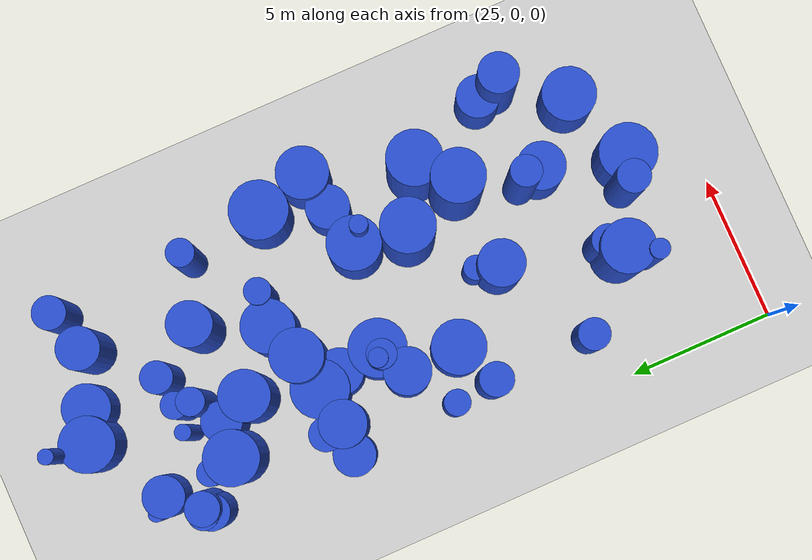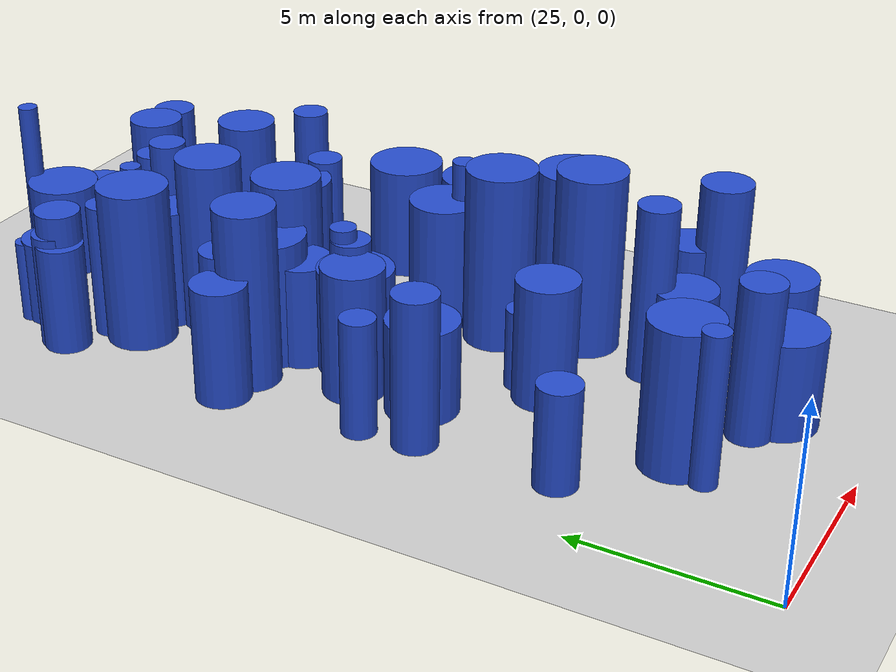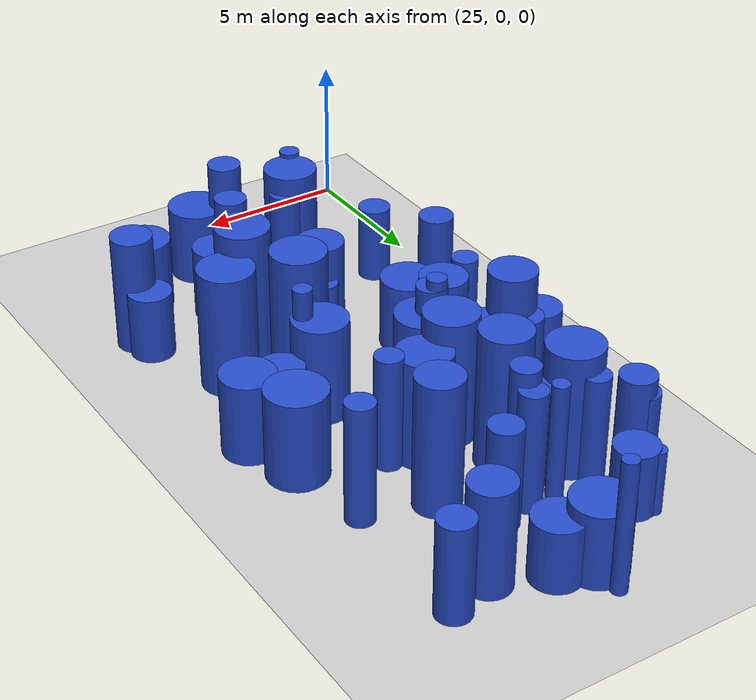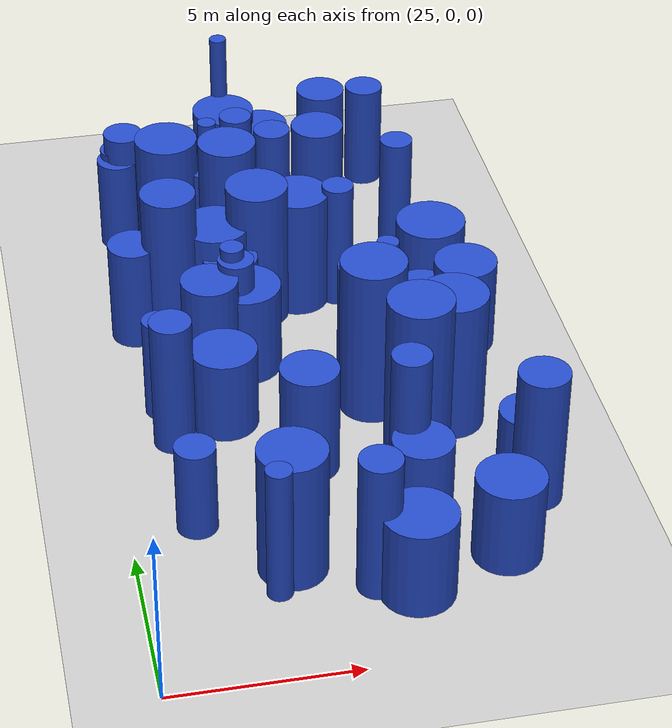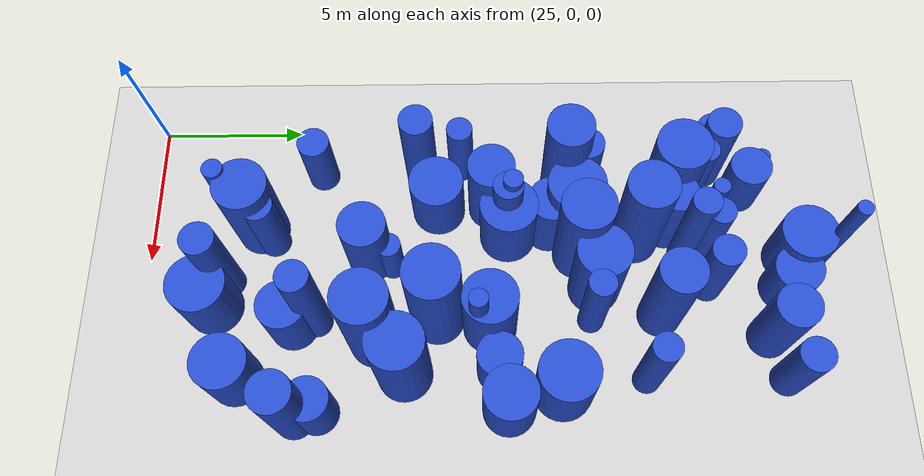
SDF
<sdf version="1.6">
 <world name="default">
  <model name="ground_plane">
   <static>1</static>
   <link name="link">
    <collision name="collision">
     <geometry><plane><normal>0 0 1</normal><size>100 100</size></plane></geometry>
     <surface><friction><ode><mu>100</mu><mu2>50</mu2></ode></friction></surface>
    </collision>
    <visual name="visual">
     <cast_shadows>0</cast_shadows>
     <geometry><plane><normal>0 0 1</normal><size>100 100</size></plane></geometry>
     <material>
      <script><uri>file://media/materials/scripts/gazebo.material</uri><name>Gazebo/Grey</name></script>
     </material>
    </visual>
   </link>
  </model>
  <model name="22">
   <static>0</static>
   <link name="link">
    <inertial>
     <mass>2</mass>
     <inertia><ixx>2.6096</ixx><ixy>0</ixy><ixz>0</ixz><iyy>2.6096</iyy><iyz>0</iyz><izz>0.20705</izz></inertia>
    </inertial>
    <collision name="collision">
     <geometry><cylinder><length>3.87769</length><radius>0.455027</radius></cylinder></geometry>
     <surface><contact><collide_without_contact>1</collide_without_contact></contact></surface>
    </collision>
    <visual name="visual">
     <geometry><cylinder><length>3.87769</length><radius>0.455027</radius></cylinder></geometry>
     <material>
      <script><uri>file://media/materials/scripts/gazebo.material</uri><name>Gazebo/Blue</name></script>
     </material>
    </visual>
    <gravity>0</gravity>
   </link>
   <pose>32.4033 15.4487 1.93884 0 -0 0</pose>
  </model>
  <model name="32">
   <static>0</static>
   <link name="link">
    <inertial>
     <mass>2</mass>
     <inertia><ixx>1.10606</ixx><ixy>0</ixy><ixz>0</ixz><iyy>1.10606</iyy><iyz>0</iyz><izz>0.512174</izz></inertia>
    </inertial>
    <collision name="collision">
     <geometry><cylinder><length>2.25828</length><radius>0.715663</radius></cylinder></geometry>
     <surface><contact><collide_without_contact>1</collide_without_contact></contact></surface>
    </collision>
    <visual name="visual">
     <geometry><cylinder><length>2.25828</length><radius>0.715663</radius></cylinder></geometry>
     <material>
      <script><uri>file://media/materials/scripts/gazebo.material</uri><name>Gazebo/Blue</name></script>
     </material>
    </visual>
    <gravity>0</gravity>
   </link>
   <pose>27.6259 21.0165 1.12914 0 -0 0</pose>
  </model>
  <model name="36">
   <static>0</static>
   <link name="link">
    <inertial>
     <mass>2</mass>
     <inertia><ixx>1.08426</ixx><ixy>0</ixy><ixz>0</ixz><iyy>1.08426</iyy><iyz>0</iyz><izz>0.683304</izz></inertia>
    </inertial>
    <collision name="collision">
     <geometry><cylinder><length>2.11084</length><radius>0.826622</radius></cylinder></geometry>
     <surface><contact><collide_without_contact>1</collide_without_contact></contact></surface>
    </collision>
    <visual name="visual">
     <geometry><cylinder><length>2.11084</length><radius>0.826622</radius></cylinder></geometry>
     <material>
      <script><uri>file://media/materials/scripts/gazebo.material</uri><name>Gazebo/Blue</name></script>
     </material>
    </visual>
    <gravity>0</gravity>
   </link>
   <pose>31.3215 22.2177 1.05542 0 -0 0</pose>
  </model>
  <model name="43">
   <static>0</static>
   <link name="link">
    <inertial>
     <mass>2</mass>
     <inertia><ixx>2.34581</ixx><ixy>0</ixy><ixz>0</ixz><iyy>2.34581</iyy><iyz>0</iyz><izz>0.257799</izz></inertia>
    </inertial>
    <collision name="collision">
     <geometry><cylinder><length>3.64712</length><radius>0.507739</radius></cylinder></geometry>
     <surface><contact><collide_without_contact>1</collide_without_contact></contact></surface>
    </collision>
    <visual name="visual">
     <geometry><cylinder><length>3.64712</length><radius>0.507739</radius></cylinder></geometry>
     <material>
      <script><uri>file://media/materials/scripts/gazebo.material</uri><name>Gazebo/Blue</name></script>
     </material>
    </visual>
    <gravity>0</gravity>
   </link>
   <pose>28.9554 12.6154 1.82356 0 -0 0</pose>
  </model>
  <model name="44">
   <static>0</static>
   <link name="link">
    <inertial>
     <mass>2</mass>
     <inertia><ixx>1.1939</ixx><ixy>0</ixy><ixz>0</ixz><iyy>1.1939</iyy><iyz>0</iyz><izz>0.566577</izz></inertia>
    </inertial>
    <collision name="collision">
     <geometry><cylinder><length>2.33744</length><radius>0.752713</radius></cylinder></geometry>
     <surface><contact><collide_without_contact>1</collide_without_contact></contact></surface>
    </collision>
    <visual name="visual">
     <geometry><cylinder><length>2.33744</length><radius>0.752713</radius></cylinder></geometry>
     <material>
      <script><uri>file://media/materials/scripts/gazebo.material</uri><name>Gazebo/Blue</name></script>
     </material>
    </visual>
    <gravity>0</gravity>
   </link>
   <pose>34.1931 12.2769 1.16872 0 -0 0</pose>
  </model>
  <model name="83">
   <static>0</static>
   <link name="link">
    <inertial>
     <mass>2</mass>
     <inertia><ixx>2.69133</ixx><ixy>0</ixy><ixz>0</ixz><iyy>2.69133</iyy><iyz>0</iyz><izz>0.117303</izz></inertia>
    </inertial>
    <collision name="collision">
     <geometry><cylinder><length>3.97443</length><radius>0.342496</radius></cylinder></geometry>
     <surface><contact><collide_without_contact>1</collide_without_contact></contact></surface>
    </collision>
    <visual name="visual">
     <geometry><cylinder><length>3.97443</length><radius>0.342496</radius></cylinder></geometry>
     <material>
      <script><uri>file://media/materials/scripts/gazebo.material</uri><name>Gazebo/Blue</name></script>
     </material>
    </visual>
    <gravity>0</gravity>
   </link>
   <pose>28.4111 3.06658 1.98721 0 -0 0</pose>
  </model>
  <model name="86">
   <static>0</static>
   <link name="link">
    <inertial>
     <mass>2</mass>
     <inertia><ixx>3.4008</ixx><ixy>0</ixy><ixz>0</ixz><iyy>3.4008</iyy><iyz>0</iyz><izz>0.876047</izz></inertia>
    </inertial>
    <collision name="collision">
     <geometry><cylinder><length>4.21624</length><radius>0.935974</radius></cylinder></geometry>
     <surface><contact><collide_without_contact>1</collide_without_contact></contact></surface>
    </collision>
    <visual name="visual">
     <geometry><cylinder><length>4.21624</length><radius>0.935974</radius></cylinder></geometry>
     <material>
      <script><uri>file://media/materials/scripts/gazebo.material</uri><name>Gazebo/Blue</name></script>
     </material>
    </visual>
    <gravity>0</gravity>
   </link>
   <pose>34.2648 9.11138 2.10812 0 -0 0</pose>
  </model>
  <model name="87">
   <static>0</static>
   <link name="link">
    <inertial>
     <mass>2</mass>
     <inertia><ixx>2.04351</ixx><ixy>0</ixy><ixz>0</ixz><iyy>2.04351</iyy><iyz>0</iyz><izz>0.993499</izz></inertia>
    </inertial>
    <collision name="collision">
     <geometry><cylinder><length>3.0464</length><radius>0.996744</radius></cylinder></geometry>
     <surface><contact><collide_without_contact>1</collide_without_contact></contact></surface>
    </collision>
    <visual name="visual">
     <geometry><cylinder><length>3.0464</length><radius>0.996744</radius></cylinder></geometry>
     <material>
      <script><uri>file://media/materials/scripts/gazebo.material</uri><name>Gazebo/Blue</name></script>
     </material>
    </visual>
    <gravity>0</gravity>
   </link>
   <pose>34.9165 14.3917 1.5232 0 -0 0</pose>
  </model>
  <model name="93">
   <static>0</static>
   <link name="link">
    <inertial>
     <mass>2</mass>
     <inertia><ixx>4.1964</ixx><ixy>0</ixy><ixz>0</ixz><iyy>4.1964</iyy><iyz>0</iyz><izz>0.839935</izz></inertia>
    </inertial>
    <collision name="collision">
     <geometry><cylinder><length>4.76011</length><radius>0.91648</radius></cylinder></geometry>
     <surface><contact><collide_without_contact>1</collide_without_contact></contact></surface>
    </collision>
    <visual name="visual">
     <geometry><cylinder><length>4.76011</length><radius>0.91648</radius></cylinder></geometry>
     <material>
      <script><uri>file://media/materials/scripts/gazebo.material</uri><name>Gazebo/Blue</name></script>
     </material>
    </visual>
    <gravity>0</gravity>
   </link>
   <pose>32.3039 10.2034 2.38005 0 -0 0</pose>
  </model>
  <model name="97">
   <static>0</static>
   <link name="link">
    <inertial>
     <mass>2</mass>
     <inertia><ixx>3.54501</ixx><ixy>0</ixy><ixz>0</ixz><iyy>3.54501</iyy><iyz>0</iyz><izz>0.223195</izz></inertia>
    </inertial>
    <collision name="collision">
     <geometry><cylinder><length>4.53878</length><radius>0.472435</radius></cylinder></geometry>
     <surface><contact><collide_without_contact>1</collide_without_contact></contact></surface>
    </collision>
    <visual name="visual">
     <geometry><cylinder><length>4.53878</length><radius>0.472435</radius></cylinder></geometry>
     <material>
      <script><uri>file://media/materials/scripts/gazebo.material</uri><name>Gazebo/Blue</name></script>
     </material>
    </visual>
    <gravity>0</gravity>
   </link>
   <pose>29.9844 18.7604 2.26939 0 -0 0</pose>
  </model>
  <model name="100">
   <static>0</static>
   <link name="link">
    <inertial>
     <mass>2</mass>
     <inertia><ixx>2.86751</ixx><ixy>0</ixy><ixz>0</ixz><iyy>2.86751</iyy><iyz>0</iyz><izz>0.204569</izz></inertia>
    </inertial>
    <collision name="collision">
     <geometry><cylinder><length>4.07325</length><radius>0.452293</radius></cylinder></geometry>
     <surface><contact><collide_without_contact>1</collide_without_contact></contact></surface>
    </collision>
    <visual name="visual">
     <geometry><cylinder><length>4.07325</length><radius>0.452293</radius></cylinder></geometry>
     <material>
      <script><uri>file://media/materials/scripts/gazebo.material</uri><name>Gazebo/Blue</name></script>
     </material>
    </visual>
    <gravity>0</gravity>
   </link>
   <pose>30.1114 19.322 2.03662 0 -0 0</pose>
  </model>
  <model name="109">
   <static>0</static>
   <link name="link">
    <inertial>
     <mass>2</mass>
     <inertia>
      <ixx>3.21555</ixx>
      <ixy>0</ixy>
      <ixz>0</ixz>
      <iyy>3.21555</iyy>
      <iyz>0</iyz>
      <izz>0.0969997</izz>
     </inertia>
    </inertial>
    <collision name="collision">
     <geometry><cylinder><length>4.35916</length><radius>0.311448</radius></cylinder></geometry>
     <surface><contact><collide_without_contact>1</collide_without_contact></contact></surface>
    </collision>
    <visual name="visual">
     <geometry><cylinder><length>4.35916</length><radius>0.311448</radius></cylinder></geometry>
     <material>
      <script><uri>file://media/materials/scripts/gazebo.material</uri><name>Gazebo/Blue</name></script>
     </material>
    </visual>
    <gravity>0</gravity>
   </link>
   <pose>33.0139 11.622 2.17958 0 -0 0</pose>
  </model>
  <model name="123">
   <static>0</static>
   <link name="link">
    <inertial>
     <mass>2</mass>
     <inertia><ixx>2.97522</ixx><ixy>0</ixy><ixz>0</ixz><iyy>2.97522</iyy><iyz>0</iyz><izz>0.477931</izz></inertia>
    </inertial>
    <collision name="collision">
     <geometry><cylinder><length>4.05186</length><radius>0.691325</radius></cylinder></geometry>
     <surface><contact><collide_without_contact>1</collide_without_contact></contact></surface>
    </collision>
    <visual name="visual">
     <geometry><cylinder><length>4.05186</length><radius>0.691325</radius></cylinder></geometry>
     <material>
      <script><uri>file://media/materials/scripts/gazebo.material</uri><name>Gazebo/Blue</name></script>
     </material>
    </visual>
    <gravity>0</gravity>
   </link>
   <pose>35.7167 5.49025 2.02593 0 -0 0</pose>
  </model>
  <model name="126">
   <static>0</static>
   <link name="link">
    <inertial>
     <mass>2</mass>
     <inertia><ixx>2.28573</ixx><ixy>0</ixy><ixz>0</ixz><iyy>2.28573</iyy><iyz>0</iyz><izz>0.638957</izz></inertia>
    </inertial>
    <collision name="collision">
     <geometry><cylinder><length>3.43475</length><radius>0.799348</radius></cylinder></geometry>
     <surface><contact><collide_without_contact>1</collide_without_contact></contact></surface>
    </collision>
    <visual name="visual">
     <geometry><cylinder><length>3.43475</length><radius>0.799348</radius></cylinder></geometry>
     <material>
      <script><uri>file://media/materials/scripts/gazebo.material</uri><name>Gazebo/Blue</name></script>
     </material>
    </visual>
    <gravity>0</gravity>
   </link>
   <pose>28.1238 12.0692 1.71738 0 -0 0</pose>
  </model>
  <model name="148">
   <static>0</static>
   <link name="link">
    <inertial>
     <mass>2</mass>
     <inertia><ixx>1.67502</ixx><ixy>0</ixy><ixz>0</ixz><iyy>1.67502</iyy><iyz>0</iyz><izz>0.801009</izz></inertia>
    </inertial>
    <collision name="collision">
     <geometry><cylinder><length>2.76534</length><radius>0.894991</radius></cylinder></geometry>
     <surface><contact><collide_without_contact>1</collide_without_contact></contact></surface>
    </collision>
    <visual name="visual">
     <geometry><cylinder><length>2.76534</length><radius>0.894991</radius></cylinder></geometry>
     <material>
      <script><uri>file://media/materials/scripts/gazebo.material</uri><name>Gazebo/Blue</name></script>
     </material>
    </visual>
    <gravity>0</gravity>
   </link>
   <pose>35.5057 12.5909 1.38267 0 -0 0</pose>
  </model>
  <model name="154">
   <static>0</static>
   <link name="link">
    <inertial>
     <mass>2</mass>
     <inertia><ixx>2.68121</ixx><ixy>0</ixy><ixz>0</ixz><iyy>2.68121</iyy><iyz>0</iyz><izz>0.810306</izz></inertia>
    </inertial>
    <collision name="collision">
     <geometry><cylinder><length>3.69545</length><radius>0.90017</radius></cylinder></geometry>
     <surface><contact><collide_without_contact>1</collide_without_contact></contact></surface>
    </collision>
    <visual name="visual">
     <geometry><cylinder><length>3.69545</length><radius>0.90017</radius></cylinder></geometry>
     <material>
      <script><uri>file://media/materials/scripts/gazebo.material</uri><name>Gazebo/Blue</name></script>
     </material>
    </visual>
    <gravity>0</gravity>
   </link>
   <pose>31.2562 15.6058 1.84772 0 -0 0</pose>
  </model>
  <model name="163">
   <static>0</static>
   <link name="link">
    <inertial>
     <mass>2</mass>
     <inertia><ixx>2.10866</ixx><ixy>0</ixy><ixz>0</ixz><iyy>2.10866</iyy><iyz>0</iyz><izz>0.326374</izz></inertia>
    </inertial>
    <collision name="collision">
     <geometry><cylinder><length>3.41656</length><radius>0.571292</radius></cylinder></geometry>
     <surface><contact><collide_without_contact>1</collide_without_contact></contact></surface>
    </collision>
    <visual name="visual">
     <geometry><cylinder><length>3.41656</length><radius>0.571292</radius></cylinder></geometry>
     <material>
      <script><uri>file://media/materials/scripts/gazebo.material</uri><name>Gazebo/Blue</name></script>
     </material>
    </visual>
    <gravity>0</gravity>
   </link>
   <pose>27.323 15.2917 1.70828 0 -0 0</pose>
  </model>
  <model name="168">
   <static>0</static>
   <link name="link">
    <inertial>
     <mass>2</mass>
     <inertia><ixx>1.86296</ixx><ixy>0</ixy><ixz>0</ixz><iyy>1.86296</iyy><iyz>0</iyz><izz>0.296661</izz></inertia>
    </inertial>
    <collision name="collision">
     <geometry><cylinder><length>3.20745</length><radius>0.544666</radius></cylinder></geometry>
     <surface><contact><collide_without_contact>1</collide_without_contact></contact></surface>
    </collision>
    <visual name="visual">
     <geometry><cylinder><length>3.20745</length><radius>0.544666</radius></cylinder></geometry>
     <material>
      <script><uri>file://media/materials/scripts/gazebo.material</uri><name>Gazebo/Blue</name></script>
     </material>
    </visual>
    <gravity>0</gravity>
   </link>
   <pose>29.3722 4.37823 1.60373 0 -0 0</pose>
  </model>
  <model name="176">
   <static>0</static>
   <link name="link">
    <inertial>
     <mass>2</mass>
     <inertia><ixx>1.55889</ixx><ixy>0</ixy><ixz>0</ixz><iyy>1.55889</iyy><iyz>0</iyz><izz>0.375125</izz></inertia>
    </inertial>
    <collision name="collision">
     <geometry><cylinder><length>2.86844</length><radius>0.612475</radius></cylinder></geometry>
     <surface><contact><collide_without_contact>1</collide_without_contact></contact></surface>
    </collision>
    <visual name="visual">
     <geometry><cylinder><length>2.86844</length><radius>0.612475</radius></cylinder></geometry>
     <material>
      <script><uri>file://media/materials/scripts/gazebo.material</uri><name>Gazebo/Blue</name></script>
     </material>
    </visual>
    <gravity>0</gravity>
   </link>
   <pose>26.525 19.7111 1.43422 0 -0 0</pose>
  </model>
  <model name="180">
   <static>0</static>
   <link name="link">
    <inertial>
     <mass>2</mass>
     <inertia><ixx>1.32146</ixx><ixy>0</ixy><ixz>0</ixz><iyy>1.32146</iyy><iyz>0</iyz><izz>0.300409</izz></inertia>
    </inertial>
    <collision name="collision">
     <geometry><cylinder><length>2.65095</length><radius>0.548096</radius></cylinder></geometry>
     <surface><contact><collide_without_contact>1</collide_without_contact></contact></surface>
    </collision>
    <visual name="visual">
     <geometry><cylinder><length>2.65095</length><radius>0.548096</radius></cylinder></geometry>
     <material>
      <script><uri>file://media/materials/scripts/gazebo.material</uri><name>Gazebo/Blue</name></script>
     </material>
    </visual>
    <gravity>0</gravity>
   </link>
   <pose>26.7727 5.97526 1.32547 0 -0 0</pose>
  </model>
  <model name="186">
   <static>0</static>
   <link name="link">
    <inertial>
     <mass>2</mass>
     <inertia><ixx>1.58975</ixx><ixy>0</ixy><ixz>0</ixz><iyy>1.58975</iyy><iyz>0</iyz><izz>0.976743</izz></inertia>
    </inertial>
    <collision name="collision">
     <geometry><cylinder><length>2.57065</length><radius>0.988303</radius></cylinder></geometry>
     <surface><contact><collide_without_contact>1</collide_without_contact></contact></surface>
    </collision>
    <visual name="visual">
     <geometry><cylinder><length>2.57065</length><radius>0.988303</radius></cylinder></geometry>
     <material>
      <script><uri>file://media/materials/scripts/gazebo.material</uri><name>Gazebo/Blue</name></script>
     </material>
    </visual>
    <gravity>0</gravity>
   </link>
   <pose>31.8033 2.4684 1.28533 0 -0 0</pose>
  </model>
  <model name="195">
   <static>0</static>
   <link name="link">
    <inertial>
     <mass>2</mass>
     <inertia><ixx>2.93314</ixx><ixy>0</ixy><ixz>0</ixz><iyy>2.93314</iyy><iyz>0</iyz><izz>0.320002</izz></inertia>
    </inertial>
    <collision name="collision">
     <geometry><cylinder><length>4.07908</length><radius>0.565687</radius></cylinder></geometry>
     <surface><contact><collide_without_contact>1</collide_without_contact></contact></surface>
    </collision>
    <visual name="visual">
     <geometry><cylinder><length>4.07908</length><radius>0.565687</radius></cylinder></geometry>
     <material>
      <script><uri>file://media/materials/scripts/gazebo.material</uri><name>Gazebo/Blue</name></script>
     </material>
    </visual>
    <gravity>0</gravity>
   </link>
   <pose>30.8856 2.87461 2.03954 0 -0 0</pose>
  </model>
  <model name="199">
   <static>0</static>
   <link name="link">
    <inertial>
     <mass>2</mass>
     <inertia><ixx>2.68232</ixx><ixy>0</ixy><ixz>0</ixz><iyy>2.68232</iyy><iyz>0</iyz><izz>0.110041</izz></inertia>
    </inertial>
    <collision name="collision">
     <geometry><cylinder><length>3.97037</length><radius>0.331725</radius></cylinder></geometry>
     <surface><contact><collide_without_contact>1</collide_without_contact></contact></surface>
    </collision>
    <visual name="visual">
     <geometry><cylinder><length>3.97037</length><radius>0.331725</radius></cylinder></geometry>
     <material>
      <script><uri>file://media/materials/scripts/gazebo.material</uri><name>Gazebo/Blue</name></script>
     </material>
    </visual>
    <gravity>0</gravity>
   </link>
   <pose>28.8775 12.7667 1.98518 0 -0 0</pose>
  </model>
  <model name="200">
   <static>0</static>
   <link name="link">
    <inertial>
     <mass>2</mass>
     <inertia>
      <ixx>2.72184</ixx>
      <ixy>0</ixy>
      <ixz>0</ixz>
      <iyy>2.72184</iyy>
      <iyz>0</iyz>
      <izz>0.0756005</izz>
     </inertia>
    </inertial>
    <collision name="collision">
     <geometry><cylinder><length>4.01301</length><radius>0.274956</radius></cylinder></geometry>
     <surface><contact><collide_without_contact>1</collide_without_contact></contact></surface>
    </collision>
    <visual name="visual">
     <geometry><cylinder><length>4.01301</length><radius>0.274956</radius></cylinder></geometry>
     <material>
      <script><uri>file://media/materials/scripts/gazebo.material</uri><name>Gazebo/Blue</name></script>
     </material>
    </visual>
    <gravity>0</gravity>
   </link>
   <pose>29.2155 19.416 2.00651 0 -0 0</pose>
  </model>
  <model name="213">
   <static>0</static>
   <link name="link">
    <inertial>
     <mass>2</mass>
     <inertia><ixx>1.43788</ixx><ixy>0</ixy><ixz>0</ixz><iyy>1.43788</iyy><iyz>0</iyz><izz>0.864671</izz></inertia>
    </inertial>
    <collision name="collision">
     <geometry><cylinder><length>2.45627</length><radius>0.929877</radius></cylinder></geometry>
     <surface><contact><collide_without_contact>1</collide_without_contact></contact></surface>
    </collision>
    <visual name="visual">
     <geometry><cylinder><length>2.45627</length><radius>0.929877</radius></cylinder></geometry>
     <material>
      <script><uri>file://media/materials/scripts/gazebo.material</uri><name>Gazebo/Blue</name></script>
     </material>
    </visual>
    <gravity>0</gravity>
   </link>
   <pose>28.1884 10.1909 1.22813 0 -0 0</pose>
  </model>
  <model name="219">
   <static>0</static>
   <link name="link">
    <inertial>
     <mass>2</mass>
     <inertia><ixx>1.85385</ixx><ixy>0</ixy><ixz>0</ixz><iyy>1.85385</iyy><iyz>0</iyz><izz>0.505461</izz></inertia>
    </inertial>
    <collision name="collision">
     <geometry><cylinder><length>3.09947</length><radius>0.710958</radius></cylinder></geometry>
     <surface><contact><collide_without_contact>1</collide_without_contact></contact></surface>
    </collision>
    <visual name="visual">
     <geometry><cylinder><length>3.09947</length><radius>0.710958</radius></cylinder></geometry>
     <material>
      <script><uri>file://media/materials/scripts/gazebo.material</uri><name>Gazebo/Blue</name></script>
     </material>
    </visual>
    <gravity>0</gravity>
   </link>
   <pose>26.3395 14.7307 1.54973 0 -0 0</pose>
  </model>
  <model name="231">
   <static>0</static>
   <link name="link">
    <inertial>
     <mass>2</mass>
     <inertia><ixx>3.99911</ixx><ixy>0</ixy><ixz>0</ixz><iyy>3.99911</iyy><iyz>0</iyz><izz>0.715938</izz></inertia>
    </inertial>
    <collision name="collision">
     <geometry><cylinder><length>4.67406</length><radius>0.846131</radius></cylinder></geometry>
     <surface><contact><collide_without_contact>1</collide_without_contact></contact></surface>
    </collision>
    <visual name="visual">
     <geometry><cylinder><length>4.67406</length><radius>0.846131</radius></cylinder></geometry>
     <material>
      <script><uri>file://media/materials/scripts/gazebo.material</uri><name>Gazebo/Blue</name></script>
     </material>
    </visual>
    <gravity>0</gravity>
   </link>
   <pose>29.4575 17.1199 2.33703 0 -0 0</pose>
  </model>
  <model name="232">
   <static>0</static>
   <link name="link">
    <inertial>
     <mass>2</mass>
     <inertia><ixx>2.41032</ixx><ixy>0</ixy><ixz>0</ixz><iyy>2.41032</iyy><iyz>0</iyz><izz>0.337116</izz></inertia>
    </inertial>
    <collision name="collision">
     <geometry><cylinder><length>3.6675</length><radius>0.580617</radius></cylinder></geometry>
     <surface><contact><collide_without_contact>1</collide_without_contact></contact></surface>
    </collision>
    <visual name="visual">
     <geometry><cylinder><length>3.6675</length><radius>0.580617</radius></cylinder></geometry>
     <material>
      <script><uri>file://media/materials/scripts/gazebo.material</uri><name>Gazebo/Blue</name></script>
     </material>
    </visual>
    <gravity>0</gravity>
   </link>
   <pose>26.7384 19.8581 1.83375 0 -0 0</pose>
  </model>
  <model name="235">
   <static>0</static>
   <link name="link">
    <inertial>
     <mass>2</mass>
     <inertia><ixx>2.35669</ixx><ixy>0</ixy><ixz>0</ixz><iyy>2.35669</iyy><iyz>0</iyz><izz>0.955242</izz></inertia>
    </inertial>
    <collision name="collision">
     <geometry><cylinder><length>3.35774</length><radius>0.977365</radius></cylinder></geometry>
     <surface><contact><collide_without_contact>1</collide_without_contact></contact></surface>
    </collision>
    <visual name="visual">
     <geometry><cylinder><length>3.35774</length><radius>0.977365</radius></cylinder></geometry>
     <material>
      <script><uri>file://media/materials/scripts/gazebo.material</uri><name>Gazebo/Blue</name></script>
     </material>
    </visual>
    <gravity>0</gravity>
   </link>
   <pose>28.7435 14.8898 1.67887 0 -0 0</pose>
  </model>
  <model name="263">
   <static>0</static>
   <link name="link">
    <inertial>
     <mass>2</mass>
     <inertia><ixx>1.41112</ixx><ixy>0</ixy><ixz>0</ixz><iyy>1.41112</iyy><iyz>0</iyz><izz>0.676107</izz></inertia>
    </inertial>
    <collision name="collision">
     <geometry><cylinder><length>2.5374</length><radius>0.822257</radius></cylinder></geometry>
     <surface><contact><collide_without_contact>1</collide_without_contact></contact></surface>
    </collision>
    <visual name="visual">
     <geometry><cylinder><length>2.5374</length><radius>0.822257</radius></cylinder></geometry>
     <material>
      <script><uri>file://media/materials/scripts/gazebo.material</uri><name>Gazebo/Blue</name></script>
     </material>
    </visual>
    <gravity>0</gravity>
   </link>
   <pose>32.5482 5.26577 1.2687 0 -0 0</pose>
  </model>
  <model name="265">
   <static>0</static>
   <link name="link">
    <inertial>
     <mass>2</mass>
     <inertia><ixx>2.91699</ixx><ixy>0</ixy><ixz>0</ixz><iyy>2.91699</iyy><iyz>0</iyz><izz>0.225126</izz></inertia>
    </inertial>
    <collision name="collision">
     <geometry><cylinder><length>4.10202</length><radius>0.474474</radius></cylinder></geometry>
     <surface><contact><collide_without_contact>1</collide_without_contact></contact></surface>
    </collision>
    <visual name="visual">
     <geometry><cylinder><length>4.10202</length><radius>0.474474</radius></cylinder></geometry>
     <material>
      <script><uri>file://media/materials/scripts/gazebo.material</uri><name>Gazebo/Blue</name></script>
     </material>
    </visual>
    <gravity>0</gravity>
   </link>
   <pose>34.5189 17.2138 2.05101 0 -0 0</pose>
  </model>
  <model name="266">
   <static>0</static>
   <link name="link">
    <inertial>
     <mass>2</mass>
     <inertia><ixx>3.35948</ixx><ixy>0</ixy><ixz>0</ixz><iyy>3.35948</iyy><iyz>0</iyz><izz>0.06762</izz></inertia>
    </inertial>
    <collision name="collision">
     <geometry><cylinder><length>4.46699</length><radius>0.260039</radius></cylinder></geometry>
     <surface><contact><collide_without_contact>1</collide_without_contact></contact></surface>
    </collision>
    <visual name="visual">
     <geometry><cylinder><length>4.46699</length><radius>0.260039</radius></cylinder></geometry>
     <material>
      <script><uri>file://media/materials/scripts/gazebo.material</uri><name>Gazebo/Blue</name></script>
     </material>
    </visual>
    <gravity>0</gravity>
   </link>
   <pose>30.2413 23.6363 2.2335 0 -0 0</pose>
  </model>
  <model name="270">
   <static>0</static>
   <link name="link">
    <inertial>
     <mass>2</mass>
     <inertia><ixx>1.66309</ixx><ixy>0</ixy><ixz>0</ixz><iyy>1.66309</iyy><iyz>0</iyz><izz>0.198882</izz></inertia>
    </inertial>
    <collision name="collision">
     <geometry><cylinder><length>3.06299</length><radius>0.445962</radius></cylinder></geometry>
     <surface><contact><collide_without_contact>1</collide_without_contact></contact></surface>
    </collision>
    <visual name="visual">
     <geometry><cylinder><length>3.06299</length><radius>0.445962</radius></cylinder></geometry>
     <material>
      <script><uri>file://media/materials/scripts/gazebo.material</uri><name>Gazebo/Blue</name></script>
     </material>
    </visual>
    <gravity>0</gravity>
   </link>
   <pose>26.5392 10.9976 1.53149 0 -0 0</pose>
  </model>
  <model name="297">
   <static>0</static>
   <link name="link">
    <inertial>
     <mass>2</mass>
     <inertia><ixx>2.08799</ixx><ixy>0</ixy><ixz>0</ixz><iyy>2.08799</iyy><iyz>0</iyz><izz>0.640894</izz></inertia>
    </inertial>
    <collision name="collision">
     <geometry><cylinder><length>3.25657</length><radius>0.800558</radius></cylinder></geometry>
     <surface><contact><collide_without_contact>1</collide_without_contact></contact></surface>
    </collision>
    <visual name="visual">
     <geometry><cylinder><length>3.25657</length><radius>0.800558</radius></cylinder></geometry>
     <material>
      <script><uri>file://media/materials/scripts/gazebo.material</uri><name>Gazebo/Blue</name></script>
     </material>
    </visual>
    <gravity>0</gravity>
   </link>
   <pose>30.0982 7.84402 1.62829 0 -0 0</pose>
  </model>
  <model name="300">
   <static>0</static>
   <link name="link">
    <inertial>
     <mass>2</mass>
     <inertia><ixx>2.31953</ixx><ixy>0</ixy><ixz>0</ixz><iyy>2.31953</iyy><iyz>0</iyz><izz>0.849454</izz></inertia>
    </inertial>
    <collision name="collision">
     <geometry><cylinder><length>3.37177</length><radius>0.921658</radius></cylinder></geometry>
     <surface><contact><collide_without_contact>1</collide_without_contact></contact></surface>
    </collision>
    <visual name="visual">
     <geometry><cylinder><length>3.37177</length><radius>0.921658</radius></cylinder></geometry>
     <material>
      <script><uri>file://media/materials/scripts/gazebo.material</uri><name>Gazebo/Blue</name></script>
     </material>
    </visual>
    <gravity>0</gravity>
   </link>
   <pose>32.626 11.9797 1.68588 0 -0 0</pose>
  </model>
  <model name="310">
   <static>0</static>
   <link name="link">
    <inertial>
     <mass>2</mass>
     <inertia><ixx>1.47932</ixx><ixy>0</ixy><ixz>0</ixz><iyy>1.47932</iyy><iyz>0</iyz><izz>0.850682</izz></inertia>
    </inertial>
    <collision name="collision">
     <geometry><cylinder><length>2.51473</length><radius>0.922324</radius></cylinder></geometry>
     <surface><contact><collide_without_contact>1</collide_without_contact></contact></surface>
    </collision>
    <visual name="visual">
     <geometry><cylinder><length>2.51473</length><radius>0.922324</radius></cylinder></geometry>
     <material>
      <script><uri>file://media/materials/scripts/gazebo.material</uri><name>Gazebo/Blue</name></script>
     </material>
    </visual>
    <gravity>0</gravity>
   </link>
   <pose>34.3715 3.44786 1.25736 0 -0 0</pose>
  </model>
  <model name="318">
   <static>0</static>
   <link name="link">
    <inertial>
     <mass>2</mass>
     <inertia><ixx>3.46255</ixx><ixy>0</ixy><ixz>0</ixz><iyy>3.46255</iyy><iyz>0</iyz><izz>0.844488</izz></inertia>
    </inertial>
    <collision name="collision">
     <geometry><cylinder><length>4.27105</length><radius>0.91896</radius></cylinder></geometry>
     <surface><contact><collide_without_contact>1</collide_without_contact></contact></surface>
    </collision>
    <visual name="visual">
     <geometry><cylinder><length>4.27105</length><radius>0.91896</radius></cylinder></geometry>
     <material>
      <script><uri>file://media/materials/scripts/gazebo.material</uri><name>Gazebo/Blue</name></script>
     </material>
    </visual>
    <gravity>0</gravity>
   </link>
   <pose>27.837 18.3086 2.13552 0 -0 0</pose>
  </model>
  <model name="330">
   <static>0</static>
   <link name="link">
    <inertial>
     <mass>2</mass>
     <inertia><ixx>2.82003</ixx><ixy>0</ixy><ixz>0</ixz><iyy>2.82003</iyy><iyz>0</iyz><izz>0.331784</izz></inertia>
    </inertial>
    <collision name="collision">
     <geometry><cylinder><length>3.9906</length><radius>0.576007</radius></cylinder></geometry>
     <surface><contact><collide_without_contact>1</collide_without_contact></contact></surface>
    </collision>
    <visual name="visual">
     <geometry><cylinder><length>3.9906</length><radius>0.576007</radius></cylinder></geometry>
     <material>
      <script><uri>file://media/materials/scripts/gazebo.material</uri><name>Gazebo/Blue</name></script>
     </material>
    </visual>
    <gravity>0</gravity>
   </link>
   <pose>26.7069 9.57566 1.9953 0 -0 0</pose>
  </model>
  <model name="339">
   <static>0</static>
   <link name="link">
    <inertial>
     <mass>2</mass>
     <inertia>
      <ixx>0.846768</ixx>
      <ixy>0</ixy>
      <ixz>0</ixz>
      <iyy>0.846768</iyy>
      <iyz>0</iyz>
      <izz>0.178108</izz>
     </inertia>
    </inertial>
    <collision name="collision">
     <geometry><cylinder><length>2.1322</length><radius>0.422028</radius></cylinder></geometry>
     <surface><contact><collide_without_contact>1</collide_without_contact></contact></surface>
    </collision>
    <visual name="visual">
     <geometry><cylinder><length>2.1322</length><radius>0.422028</radius></cylinder></geometry>
     <material>
      <script><uri>file://media/materials/scripts/gazebo.material</uri><name>Gazebo/Blue</name></script>
     </material>
    </visual>
    <gravity>0</gravity>
   </link>
   <pose>30.369 8.6004 1.0661 0 -0 0</pose>
  </model>
  <model name="340">
   <static>0</static>
   <link name="link">
    <inertial>
     <mass>2</mass>
     <inertia><ixx>4.04035</ixx><ixy>0</ixy><ixz>0</ixz><iyy>4.04035</iyy><iyz>0</iyz><izz>0.618859</izz></inertia>
    </inertial>
    <collision name="collision">
     <geometry><cylinder><length>4.73133</length><radius>0.786676</radius></cylinder></geometry>
     <surface><contact><collide_without_contact>1</collide_without_contact></contact></surface>
    </collision>
    <visual name="visual">
     <geometry><cylinder><length>4.73133</length><radius>0.786676</radius></cylinder></geometry>
     <material>
      <script><uri>file://media/materials/scripts/gazebo.material</uri><name>Gazebo/Blue</name></script>
     </material>
    </visual>
    <gravity>0</gravity>
   </link>
   <pose>27.384 14.6295 2.36567 0 -0 0</pose>
  </model>
  <model name="356">
   <static>0</static>
   <link name="link">
    <inertial>
     <mass>2</mass>
     <inertia><ixx>1.96398</ixx><ixy>0</ixy><ixz>0</ixz><iyy>1.96398</iyy><iyz>0</iyz><izz>0.468879</izz></inertia>
    </inertial>
    <collision name="collision">
     <geometry><cylinder><length>3.22138</length><radius>0.684747</radius></cylinder></geometry>
     <surface><contact><collide_without_contact>1</collide_without_contact></contact></surface>
    </collision>
    <visual name="visual">
     <geometry><cylinder><length>3.22138</length><radius>0.684747</radius></cylinder></geometry>
     <material>
      <script><uri>file://media/materials/scripts/gazebo.material</uri><name>Gazebo/Blue</name></script>
     </material>
    </visual>
    <gravity>0</gravity>
   </link>
   <pose>29.0579 18.2243 1.61069 0 -0 0</pose>
  </model>
  <model name="357">
   <static>0</static>
   <link name="link">
    <inertial>
     <mass>2</mass>
     <inertia><ixx>1.50444</ixx><ixy>0</ixy><ixz>0</ixz><iyy>1.50444</iyy><iyz>0</iyz><izz>0.902649</izz></inertia>
    </inertial>
    <collision name="collision">
     <geometry><cylinder><length>2.5137</length><radius>0.950079</radius></cylinder></geometry>
     <surface><contact><collide_without_contact>1</collide_without_contact></contact></surface>
    </collision>
    <visual name="visual">
     <geometry><cylinder><length>2.5137</length><radius>0.950079</radius></cylinder></geometry>
     <material>
      <script><uri>file://media/materials/scripts/gazebo.material</uri><name>Gazebo/Blue</name></script>
     </material>
    </visual>
    <gravity>0</gravity>
   </link>
   <pose>30.1913 22.5995 1.25685 0 -0 0</pose>
  </model>
  <model name="359">
   <static>0</static>
   <link name="link">
    <inertial>
     <mass>2</mass>
     <inertia><ixx>1.93554</ixx><ixy>0</ixy><ixz>0</ixz><iyy>1.93554</iyy><iyz>0</iyz><izz>0.326309</izz></inertia>
    </inertial>
    <collision name="collision">
     <geometry><cylinder><length>3.26103</length><radius>0.571235</radius></cylinder></geometry>
     <surface><contact><collide_without_contact>1</collide_without_contact></contact></surface>
    </collision>
    <visual name="visual">
     <geometry><cylinder><length>3.26103</length><radius>0.571235</radius></cylinder></geometry>
     <material>
      <script><uri>file://media/materials/scripts/gazebo.material</uri><name>Gazebo/Blue</name></script>
     </material>
    </visual>
    <gravity>0</gravity>
   </link>
   <pose>34.5611 21.9374 1.63051 0 -0 0</pose>
  </model>
  <model name="362">
   <static>0</static>
   <link name="link">
    <inertial>
     <mass>2</mass>
     <inertia><ixx>2.37857</ixx><ixy>0</ixy><ixz>0</ixz><iyy>2.37857</iyy><iyz>0</iyz><izz>0.532843</izz></inertia>
    </inertial>
    <collision name="collision">
     <geometry><cylinder><length>3.5599</length><radius>0.729961</radius></cylinder></geometry>
     <surface><contact><collide_without_contact>1</collide_without_contact></contact></surface>
    </collision>
    <visual name="visual">
     <geometry><cylinder><length>3.5599</length><radius>0.729961</radius></cylinder></geometry>
     <material>
      <script><uri>file://media/materials/scripts/gazebo.material</uri><name>Gazebo/Blue</name></script>
     </material>
    </visual>
    <gravity>0</gravity>
   </link>
   <pose>33.0879 21.4928 1.77995 0 -0 0</pose>
  </model>
  <model name="374">
   <static>0</static>
   <link name="link">
    <inertial>
     <mass>2</mass>
     <inertia><ixx>3.59949</ixx><ixy>0</ixy><ixz>0</ixz><iyy>3.59949</iyy><iyz>0</iyz><izz>0.798994</izz></inertia>
    </inertial>
    <collision name="collision">
     <geometry><cylinder><length>4.38177</length><radius>0.893865</radius></cylinder></geometry>
     <surface><contact><collide_without_contact>1</collide_without_contact></contact></surface>
    </collision>
    <visual name="visual">
     <geometry><cylinder><length>4.38177</length><radius>0.893865</radius></cylinder></geometry>
     <material>
      <script><uri>file://media/materials/scripts/gazebo.material</uri><name>Gazebo/Blue</name></script>
     </material>
    </visual>
    <gravity>0</gravity>
   </link>
   <pose>29.9794 15.1086 2.19089 0 -0 0</pose>
  </model>
  <model name="378">
   <static>0</static>
   <link name="link">
    <inertial>
     <mass>2</mass>
     <inertia><ixx>1.56135</ixx><ixy>0</ixy><ixz>0</ixz><iyy>1.56135</iyy><iyz>0</iyz><izz>0.625738</izz></inertia>
    </inertial>
    <collision name="collision">
     <geometry><cylinder><length>2.73694</length><radius>0.791036</radius></cylinder></geometry>
     <surface><contact><collide_without_contact>1</collide_without_contact></contact></surface>
    </collision>
    <visual name="visual">
     <geometry><cylinder><length>2.73694</length><radius>0.791036</radius></cylinder></geometry>
     <material>
      <script><uri>file://media/materials/scripts/gazebo.material</uri><name>Gazebo/Blue</name></script>
     </material>
    </visual>
    <gravity>0</gravity>
   </link>
   <pose>29.0165 14.0855 1.36847 0 -0 0</pose>
  </model>
  <model name="394">
   <static>0</static>
   <link name="link">
    <inertial>
     <mass>2</mass>
     <inertia><ixx>2.14873</ixx><ixy>0</ixy><ixz>0</ixz><iyy>2.14873</iyy><iyz>0</iyz><izz>0.297922</izz></inertia>
    </inertial>
    <collision name="collision">
     <geometry><cylinder><length>3.4639</length><radius>0.545823</radius></cylinder></geometry>
     <surface><contact><collide_without_contact>1</collide_without_contact></contact></surface>
    </collision>
    <visual name="visual">
     <geometry><cylinder><length>3.4639</length><radius>0.545823</radius></cylinder></geometry>
     <material>
      <script><uri>file://media/materials/scripts/gazebo.material</uri><name>Gazebo/Blue</name></script>
     </material>
    </visual>
    <gravity>0</gravity>
   </link>
   <pose>31.2101 19.555 1.73195 0 -0 0</pose>
  </model>
  <model name="397">
   <static>0</static>
   <link name="link">
    <inertial>
     <mass>2</mass>
     <inertia><ixx>1.71135</ixx><ixy>0</ixy><ixz>0</ixz><iyy>1.71135</iyy><iyz>0</iyz><izz>0.266397</izz></inertia>
    </inertial>
    <collision name="collision">
     <geometry><cylinder><length>3.07716</length><radius>0.516136</radius></cylinder></geometry>
     <surface><contact><collide_without_contact>1</collide_without_contact></contact></surface>
    </collision>
    <visual name="visual">
     <geometry><cylinder><length>3.07716</length><radius>0.516136</radius></cylinder></geometry>
     <material>
      <script><uri>file://media/materials/scripts/gazebo.material</uri><name>Gazebo/Blue</name></script>
     </material>
    </visual>
    <gravity>0</gravity>
   </link>
   <pose>26.5649 19.963 1.53858 0 -0 0</pose>
  </model>
  <model name="400">
   <static>0</static>
   <link name="link">
    <inertial>
     <mass>2</mass>
     <inertia><ixx>4.34946</ixx><ixy>0</ixy><ixz>0</ixz><iyy>4.34946</iyy><iyz>0</iyz><izz>0.817641</izz></inertia>
    </inertial>
    <collision name="collision">
     <geometry><cylinder><length>4.86249</length><radius>0.904235</radius></cylinder></geometry>
     <surface><contact><collide_without_contact>1</collide_without_contact></contact></surface>
    </collision>
    <visual name="visual">
     <geometry><cylinder><length>4.86249</length><radius>0.904235</radius></cylinder></geometry>
     <material>
      <script><uri>file://media/materials/scripts/gazebo.material</uri><name>Gazebo/Blue</name></script>
     </material>
    </visual>
    <gravity>0</gravity>
   </link>
   <pose>33.0958 8.10167 2.43125 0 -0 0</pose>
  </model>
  <model name="403">
   <static>0</static>
   <link name="link">
    <inertial>
     <mass>2</mass>
     <inertia><ixx>2.86566</ixx><ixy>0</ixy><ixz>0</ixz><iyy>2.86566</iyy><iyz>0</iyz><izz>0.829342</izz></inertia>
    </inertial>
    <collision name="collision">
     <geometry><cylinder><length>3.83483</length><radius>0.910682</radius></cylinder></geometry>
     <surface><contact><collide_without_contact>1</collide_without_contact></contact></surface>
    </collision>
    <visual name="visual">
     <geometry><cylinder><length>3.83483</length><radius>0.910682</radius></cylinder></geometry>
     <material>
      <script><uri>file://media/materials/scripts/gazebo.material</uri><name>Gazebo/Blue</name></script>
     </material>
    </visual>
    <gravity>0</gravity>
   </link>
   <pose>28.9043 3.93565 1.91741 0 -0 0</pose>
  </model>
  <model name="408">
   <static>0</static>
   <link name="link">
    <inertial>
     <mass>2</mass>
     <inertia><ixx>1.74271</ixx><ixy>0</ixy><ixz>0</ixz><iyy>1.74271</iyy><iyz>0</iyz><izz>0.97125</izz></inertia>
    </inertial>
    <collision name="collision">
     <geometry><cylinder><length>2.74637</length><radius>0.98552</radius></cylinder></geometry>
     <surface><contact><collide_without_contact>1</collide_without_contact></contact></surface>
    </collision>
    <visual name="visual">
     <geometry><cylinder><length>2.74637</length><radius>0.98552</radius></cylinder></geometry>
     <material>
      <script><uri>file://media/materials/scripts/gazebo.material</uri><name>Gazebo/Blue</name></script>
     </material>
    </visual>
    <gravity>0</gravity>
   </link>
   <pose>29.2254 12.6492 1.37318 0 -0 0</pose>
  </model>
  <model name="409">
   <static>0</static>
   <link name="link">
    <inertial>
     <mass>2</mass>
     <inertia>
      <ixx>0.847181</ixx>
      <ixy>0</ixy>
      <ixz>0</ixz>
      <iyy>0.847181</iyy>
      <iyz>0</iyz>
      <izz>0.0784366</izz>
     </inertia>
    </inertial>
    <collision name="collision">
     <geometry><cylinder><length>2.20177</length><radius>0.280065</radius></cylinder></geometry>
     <surface><contact><collide_without_contact>1</collide_without_contact></contact></surface>
    </collision>
    <visual name="visual">
     <geometry><cylinder><length>2.20177</length><radius>0.280065</radius></cylinder></geometry>
     <material>
      <script><uri>file://media/materials/scripts/gazebo.material</uri><name>Gazebo/Blue</name></script>
     </material>
    </visual>
    <gravity>0</gravity>
   </link>
   <pose>27.2194 21.4531 1.10088 0 -0 0</pose>
  </model>
  <model name="418">
   <static>0</static>
   <link name="link">
    <inertial>
     <mass>2</mass>
     <inertia><ixx>3.77841</ixx><ixy>0</ixy><ixz>0</ixz><iyy>3.77841</iyy><iyz>0</iyz><izz>0.282378</izz></inertia>
    </inertial>
    <collision name="collision">
     <geometry><cylinder><length>4.67154</length><radius>0.531393</radius></cylinder></geometry>
     <surface><contact><collide_without_contact>1</collide_without_contact></contact></surface>
    </collision>
    <visual name="visual">
     <geometry><cylinder><length>4.67154</length><radius>0.531393</radius></cylinder></geometry>
     <material>
      <script><uri>file://media/materials/scripts/gazebo.material</uri><name>Gazebo/Blue</name></script>
     </material>
    </visual>
    <gravity>0</gravity>
   </link>
   <pose>32.3763 6.04659 2.33577 0 -0 0</pose>
  </model>
  <model name="463">
   <static>0</static>
   <link name="link">
    <inertial>
     <mass>2</mass>
     <inertia><ixx>3.6788</ixx><ixy>0</ixy><ixz>0</ixz><iyy>3.6788</iyy><iyz>0</iyz><izz>0.577997</izz></inertia>
    </inertial>
    <collision name="collision">
     <geometry><cylinder><length>4.50986</length><radius>0.760261</radius></cylinder></geometry>
     <surface><contact><collide_without_contact>1</collide_without_contact></contact></surface>
    </collision>
    <visual name="visual">
     <geometry><cylinder><length>4.50986</length><radius>0.760261</radius></cylinder></geometry>
     <material>
      <script><uri>file://media/materials/scripts/gazebo.material</uri><name>Gazebo/Blue</name></script>
     </material>
    </visual>
    <gravity>0</gravity>
   </link>
   <pose>32.2592 17.8199 2.25493 0 -0 0</pose>
  </model>
  <model name="492">
   <static>0</static>
   <link name="link">
    <inertial>
     <mass>2</mass>
     <inertia><ixx>1.15981</ixx><ixy>0</ixy><ixz>0</ixz><iyy>1.15981</iyy><iyz>0</iyz><izz>0.539671</izz></inertia>
    </inertial>
    <collision name="collision">
     <geometry><cylinder><length>2.31081</length><radius>0.734623</radius></cylinder></geometry>
     <surface><contact><collide_without_contact>1</collide_without_contact></contact></surface>
    </collision>
    <visual name="visual">
     <geometry><cylinder><length>2.31081</length><radius>0.734623</radius></cylinder></geometry>
     <material>
      <script><uri>file://media/materials/scripts/gazebo.material</uri><name>Gazebo/Blue</name></script>
     </material>
    </visual>
    <gravity>0</gravity>
   </link>
   <pose>35.546 6.22651 1.1554 0 -0 0</pose>
  </model>
  <model name="498">
   <static>0</static>
   <link name="link">
    <inertial>
     <mass>2</mass>
     <inertia><ixx>2.2793</ixx><ixy>0</ixy><ixz>0</ixz><iyy>2.2793</iyy><iyz>0</iyz><izz>0.202466</izz></inertia>
    </inertial>
    <collision name="collision">
     <geometry><cylinder><length>3.61503</length><radius>0.449962</radius></cylinder></geometry>
     <surface><contact><collide_without_contact>1</collide_without_contact></contact></surface>
    </collision>
    <visual name="visual">
     <geometry><cylinder><length>3.61503</length><radius>0.449962</radius></cylinder></geometry>
     <material>
      <script><uri>file://media/materials/scripts/gazebo.material</uri><name>Gazebo/Blue</name></script>
     </material>
    </visual>
    <gravity>0</gravity>
   </link>
   <pose>27.6911 19.1654 1.80751 0 -0 0</pose>
  </model>
 </world>
</sdf>
